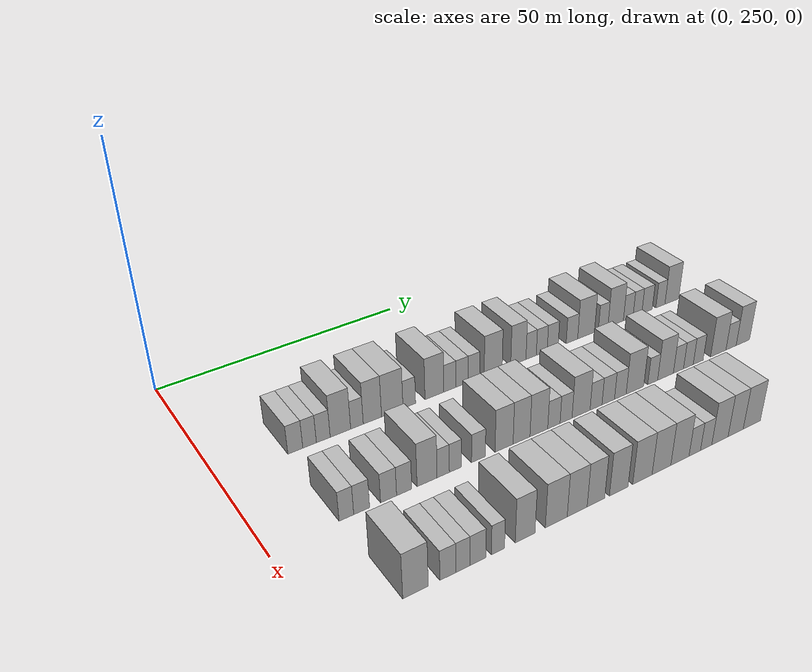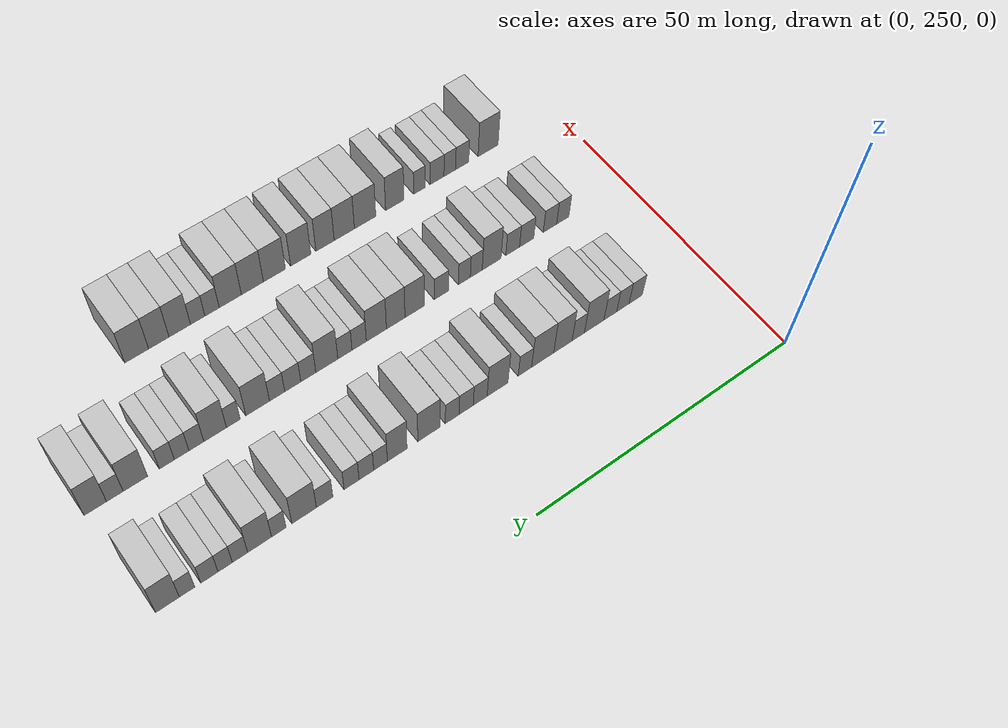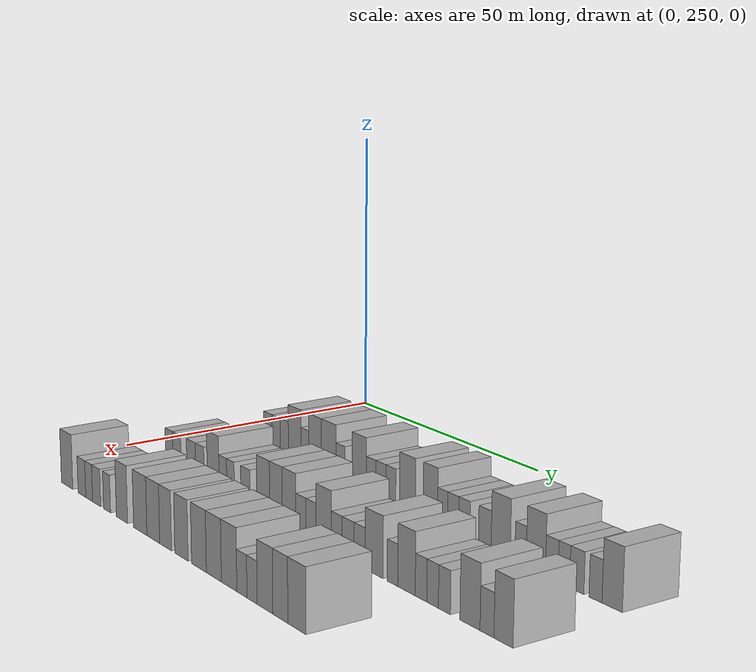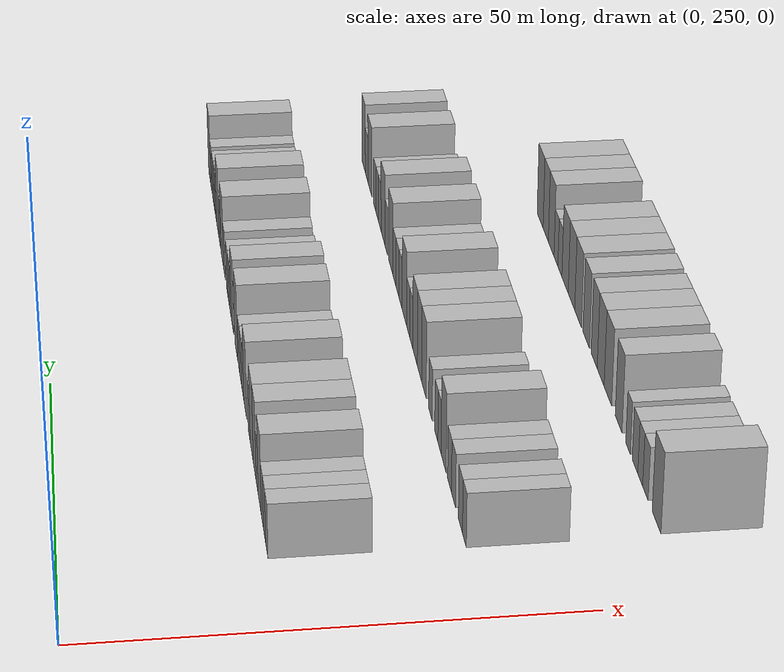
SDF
<sdf version="1.6">
 <world name="default">
  <model name="building_145">
   <static>1</static>
   <pose>25.0000 263.9168 0 0.000000 0.000000 0.000000</pose>
   <link name="link">
    <pose>0 0 3.00 0 0 0</pose>
    <collision name="collision"><geometry><box><size>10.0000 2.8024 6.0000</size></box></geometry></collision>
    <visual name="visual">
     <cast_shadows>0</cast_shadows>
     <geometry><box><size>10.0000 2.8024 6.0000</size></box></geometry>
     <material>
      <script>
       <uri>model://HANNAS_wall/materials/scripts</uri>
       <uri>model://HANNAS_wall/materials/textures</uri>
       <name>vrc/HANNAS_wall</name>
      </script>
     </material>
    </visual>
   </link>
  </model>
  <model name="building_146">
   <static>1</static>
   <pose>25.0000 266.6062 0 0.000000 0.000000 0.000000</pose>
   <link name="link">
    <pose>0 0 3.00 0 0 0</pose>
    <collision name="collision"><geometry><box><size>10.0000 2.5764 6.0000</size></box></geometry></collision>
    <visual name="visual">
     <cast_shadows>0</cast_shadows>
     <geometry><box><size>10.0000 2.5764 6.0000</size></box></geometry>
     <material>
      <script>
       <uri>model://HANNAS_wall/materials/scripts</uri>
       <uri>model://HANNAS_wall/materials/textures</uri>
       <name>vrc/HANNAS_wall</name>
      </script>
     </material>
    </visual>
   </link>
  </model>
  <model name="building_147">
   <static>1</static>
   <pose>25.0000 269.2245 0 0.000000 0.000000 0.000000</pose>
   <link name="link">
    <pose>0 0 3.00 0 0 0</pose>
    <collision name="collision"><geometry><box><size>10.0000 2.6601 6.0000</size></box></geometry></collision>
    <visual name="visual">
     <cast_shadows>0</cast_shadows>
     <geometry><box><size>10.0000 2.6601 6.0000</size></box></geometry>
     <material>
      <script>
       <uri>model://HANNAS_wall/materials/scripts</uri>
       <uri>model://HANNAS_wall/materials/textures</uri>
       <name>vrc/HANNAS_wall</name>
      </script>
     </material>
    </visual>
   </link>
  </model>
  <model name="building_148">
   <static>1</static>
   <pose>25.0000 272.5549 0 0.000000 0.000000 0.000000</pose>
   <link name="link">
    <pose>0 0 4.50 0 0 0</pose>
    <collision name="collision"><geometry><box><size>10.0000 4.0006 9.0000</size></box></geometry></collision>
    <visual name="visual">
     <cast_shadows>0</cast_shadows>
     <geometry><box><size>10.0000 4.0006 9.0000</size></box></geometry>
     <material>
      <script>
       <uri>model://HANNAS_wall/materials/scripts</uri>
       <uri>model://HANNAS_wall/materials/textures</uri>
       <name>vrc/HANNAS_wall</name>
      </script>
     </material>
    </visual>
   </link>
  </model>
  <model name="building_149">
   <static>1</static>
   <pose>25.0000 275.8095 0 0.000000 0.000000 0.000000</pose>
   <link name="link">
    <pose>0 0 3.00 0 0 0</pose>
    <collision name="collision"><geometry><box><size>10.0000 2.5087 6.0000</size></box></geometry></collision>
    <visual name="visual">
     <cast_shadows>0</cast_shadows>
     <geometry><box><size>10.0000 2.5087 6.0000</size></box></geometry>
     <material>
      <script>
       <uri>model://HANNAS_wall/materials/scripts</uri>
       <uri>model://HANNAS_wall/materials/textures</uri>
       <name>vrc/HANNAS_wall</name>
      </script>
     </material>
    </visual>
   </link>
  </model>
  <model name="building_150">
   <static>1</static>
   <pose>25.0000 278.9166 0 0.000000 0.000000 0.000000</pose>
   <link name="link">
    <pose>0 0 4.50 0 0 0</pose>
    <collision name="collision"><geometry><box><size>10.0000 3.7054 9.0000</size></box></geometry></collision>
    <visual name="visual">
     <cast_shadows>0</cast_shadows>
     <geometry><box><size>10.0000 3.7054 9.0000</size></box></geometry>
     <material>
      <script>
       <uri>model://HANNAS_wall/materials/scripts</uri>
       <uri>model://HANNAS_wall/materials/textures</uri>
       <name>vrc/HANNAS_wall</name>
      </script>
     </material>
    </visual>
   </link>
  </model>
  <model name="building_151">
   <static>1</static>
   <pose>25.0000 282.9810 0 0.000000 0.000000 0.000000</pose>
   <link name="link">
    <pose>0 0 4.50 0 0 0</pose>
    <collision name="collision"><geometry><box><size>10.0000 4.4233 9.0000</size></box></geometry></collision>
    <visual name="visual">
     <cast_shadows>0</cast_shadows>
     <geometry><box><size>10.0000 4.4233 9.0000</size></box></geometry>
     <material>
      <script>
       <uri>model://HANNAS_wall/materials/scripts</uri>
       <uri>model://HANNAS_wall/materials/textures</uri>
       <name>vrc/HANNAS_wall</name>
      </script>
     </material>
    </visual>
   </link>
  </model>
  <model name="building_152">
   <static>1</static>
   <pose>25.0000 286.5174 0 0.000000 0.000000 0.000000</pose>
   <link name="link">
    <pose>0 0 3.00 0 0 0</pose>
    <collision name="collision"><geometry><box><size>10.0000 2.6497 6.0000</size></box></geometry></collision>
    <visual name="visual">
     <cast_shadows>0</cast_shadows>
     <geometry><box><size>10.0000 2.6497 6.0000</size></box></geometry>
     <material>
      <script>
       <uri>model://HANNAS_wall/materials/scripts</uri>
       <uri>model://HANNAS_wall/materials/textures</uri>
       <name>vrc/HANNAS_wall</name>
      </script>
     </material>
    </visual>
   </link>
  </model>
  <model name="building_153">
   <static>1</static>
   <pose>25.0000 291.8683 0 0.000000 0.000000 0.000000</pose>
   <link name="link">
    <pose>0 0 4.50 0 0 0</pose>
    <collision name="collision"><geometry><box><size>10.0000 4.0520 9.0000</size></box></geometry></collision>
    <visual name="visual">
     <cast_shadows>0</cast_shadows>
     <geometry><box><size>10.0000 4.0520 9.0000</size></box></geometry>
     <material>
      <script>
       <uri>model://HANNAS_wall/materials/scripts</uri>
       <uri>model://HANNAS_wall/materials/textures</uri>
       <name>vrc/HANNAS_wall</name>
      </script>
     </material>
    </visual>
   </link>
  </model>
  <model name="building_154">
   <static>1</static>
   <pose>25.0000 295.2317 0 0.000000 0.000000 0.000000</pose>
   <link name="link">
    <pose>0 0 3.00 0 0 0</pose>
    <collision name="collision"><geometry><box><size>10.0000 2.6749 6.0000</size></box></geometry></collision>
    <visual name="visual">
     <cast_shadows>0</cast_shadows>
     <geometry><box><size>10.0000 2.6749 6.0000</size></box></geometry>
     <material>
      <script>
       <uri>model://HANNAS_wall/materials/scripts</uri>
       <uri>model://HANNAS_wall/materials/textures</uri>
       <name>vrc/HANNAS_wall</name>
      </script>
     </material>
    </visual>
   </link>
  </model>
  <model name="building_155">
   <static>1</static>
   <pose>25.0000 297.9296 0 0.000000 0.000000 0.000000</pose>
   <link name="link">
    <pose>0 0 3.00 0 0 0</pose>
    <collision name="collision"><geometry><box><size>10.0000 2.7210 6.0000</size></box></geometry></collision>
    <visual name="visual">
     <cast_shadows>0</cast_shadows>
     <geometry><box><size>10.0000 2.7210 6.0000</size></box></geometry>
     <material>
      <script>
       <uri>model://HANNAS_wall/materials/scripts</uri>
       <uri>model://HANNAS_wall/materials/textures</uri>
       <name>vrc/HANNAS_wall</name>
      </script>
     </material>
    </visual>
   </link>
  </model>
  <model name="building_156">
   <static>1</static>
   <pose>25.0000 300.6018 0 0.000000 0.000000 0.000000</pose>
   <link name="link">
    <pose>0 0 3.00 0 0 0</pose>
    <collision name="collision"><geometry><box><size>10.0000 2.6234 6.0000</size></box></geometry></collision>
    <visual name="visual">
     <cast_shadows>0</cast_shadows>
     <geometry><box><size>10.0000 2.6234 6.0000</size></box></geometry>
     <material>
      <script>
       <uri>model://HANNAS_wall/materials/scripts</uri>
       <uri>model://HANNAS_wall/materials/textures</uri>
       <name>vrc/HANNAS_wall</name>
      </script>
     </material>
    </visual>
   </link>
  </model>
  <model name="building_157">
   <static>1</static>
   <pose>25.0000 304.9858 0 0.000000 0.000000 0.000000</pose>
   <link name="link">
    <pose>0 0 4.50 0 0 0</pose>
    <collision name="collision"><geometry><box><size>10.0000 4.1446 9.0000</size></box></geometry></collision>
    <visual name="visual">
     <cast_shadows>0</cast_shadows>
     <geometry><box><size>10.0000 4.1446 9.0000</size></box></geometry>
     <material>
      <script>
       <uri>model://HANNAS_wall/materials/scripts</uri>
       <uri>model://HANNAS_wall/materials/textures</uri>
       <name>vrc/HANNAS_wall</name>
      </script>
     </material>
    </visual>
   </link>
  </model>
  <model name="building_158">
   <static>1</static>
   <pose>25.0000 310.8632 0 0.000000 0.000000 0.000000</pose>
   <link name="link">
    <pose>0 0 4.50 0 0 0</pose>
    <collision name="collision"><geometry><box><size>10.0000 3.6101 9.0000</size></box></geometry></collision>
    <visual name="visual">
     <cast_shadows>0</cast_shadows>
     <geometry><box><size>10.0000 3.6101 9.0000</size></box></geometry>
     <material>
      <script>
       <uri>model://HANNAS_wall/materials/scripts</uri>
       <uri>model://HANNAS_wall/materials/textures</uri>
       <name>vrc/HANNAS_wall</name>
      </script>
     </material>
    </visual>
   </link>
  </model>
  <model name="building_159">
   <static>1</static>
   <pose>25.0000 313.9102 0 0.000000 0.000000 0.000000</pose>
   <link name="link">
    <pose>0 0 3.00 0 0 0</pose>
    <collision name="collision"><geometry><box><size>10.0000 2.4839 6.0000</size></box></geometry></collision>
    <visual name="visual">
     <cast_shadows>0</cast_shadows>
     <geometry><box><size>10.0000 2.4839 6.0000</size></box></geometry>
     <material>
      <script>
       <uri>model://HANNAS_wall/materials/scripts</uri>
       <uri>model://HANNAS_wall/materials/textures</uri>
       <name>vrc/HANNAS_wall</name>
      </script>
     </material>
    </visual>
   </link>
  </model>
  <model name="building_160">
   <static>1</static>
   <pose>25.0000 316.4778 0 0.000000 0.000000 0.000000</pose>
   <link name="link">
    <pose>0 0 3.00 0 0 0</pose>
    <collision name="collision"><geometry><box><size>10.0000 2.6513 6.0000</size></box></geometry></collision>
    <visual name="visual">
     <cast_shadows>0</cast_shadows>
     <geometry><box><size>10.0000 2.6513 6.0000</size></box></geometry>
     <material>
      <script>
       <uri>model://HANNAS_wall/materials/scripts</uri>
       <uri>model://HANNAS_wall/materials/textures</uri>
       <name>vrc/HANNAS_wall</name>
      </script>
     </material>
    </visual>
   </link>
  </model>
  <model name="building_161">
   <static>1</static>
   <pose>25.0000 319.1506 0 0.000000 0.000000 0.000000</pose>
   <link name="link">
    <pose>0 0 3.00 0 0 0</pose>
    <collision name="collision"><geometry><box><size>10.0000 2.6942 6.0000</size></box></geometry></collision>
    <visual name="visual">
     <cast_shadows>0</cast_shadows>
     <geometry><box><size>10.0000 2.6942 6.0000</size></box></geometry>
     <material>
      <script>
       <uri>model://HANNAS_wall/materials/scripts</uri>
       <uri>model://HANNAS_wall/materials/textures</uri>
       <name>vrc/HANNAS_wall</name>
      </script>
     </material>
    </visual>
   </link>
  </model>
  <model name="building_162">
   <static>1</static>
   <pose>25.0000 323.9508 0 0.000000 0.000000 0.000000</pose>
   <link name="link">
    <pose>0 0 3.00 0 0 0</pose>
    <collision name="collision"><geometry><box><size>10.0000 2.9062 6.0000</size></box></geometry></collision>
    <visual name="visual">
     <cast_shadows>0</cast_shadows>
     <geometry><box><size>10.0000 2.9062 6.0000</size></box></geometry>
     <material>
      <script>
       <uri>model://HANNAS_wall/materials/scripts</uri>
       <uri>model://HANNAS_wall/materials/textures</uri>
       <name>vrc/HANNAS_wall</name>
      </script>
     </material>
    </visual>
   </link>
  </model>
  <model name="building_163">
   <static>1</static>
   <pose>25.0000 327.5592 0 0.000000 0.000000 0.000000</pose>
   <link name="link">
    <pose>0 0 4.50 0 0 0</pose>
    <collision name="collision"><geometry><box><size>10.0000 4.3105 9.0000</size></box></geometry></collision>
    <visual name="visual">
     <cast_shadows>0</cast_shadows>
     <geometry><box><size>10.0000 4.3105 9.0000</size></box></geometry>
     <material>
      <script>
       <uri>model://HANNAS_wall/materials/scripts</uri>
       <uri>model://HANNAS_wall/materials/textures</uri>
       <name>vrc/HANNAS_wall</name>
      </script>
     </material>
    </visual>
   </link>
  </model>
  <model name="building_164">
   <static>1</static>
   <pose>25.0000 331.9665 0 0.000000 0.000000 0.000000</pose>
   <link name="link">
    <pose>0 0 3.00 0 0 0</pose>
    <collision name="collision"><geometry><box><size>10.0000 2.5041 6.0000</size></box></geometry></collision>
    <visual name="visual">
     <cast_shadows>0</cast_shadows>
     <geometry><box><size>10.0000 2.5041 6.0000</size></box></geometry>
     <material>
      <script>
       <uri>model://HANNAS_wall/materials/scripts</uri>
       <uri>model://HANNAS_wall/materials/textures</uri>
       <name>vrc/HANNAS_wall</name>
      </script>
     </material>
    </visual>
   </link>
  </model>
  <model name="building_165">
   <static>1</static>
   <pose>25.0000 335.2694 0 0.000000 0.000000 0.000000</pose>
   <link name="link">
    <pose>0 0 4.50 0 0 0</pose>
    <collision name="collision"><geometry><box><size>10.0000 4.1018 9.0000</size></box></geometry></collision>
    <visual name="visual">
     <cast_shadows>0</cast_shadows>
     <geometry><box><size>10.0000 4.1018 9.0000</size></box></geometry>
     <material>
      <script>
       <uri>model://HANNAS_wall/materials/scripts</uri>
       <uri>model://HANNAS_wall/materials/textures</uri>
       <name>vrc/HANNAS_wall</name>
      </script>
     </material>
    </visual>
   </link>
  </model>
  <model name="building_166">
   <static>1</static>
   <pose>25.0000 338.6179 0 0.000000 0.000000 0.000000</pose>
   <link name="link">
    <pose>0 0 3.00 0 0 0</pose>
    <collision name="collision"><geometry><box><size>10.0000 2.5952 6.0000</size></box></geometry></collision>
    <visual name="visual">
     <cast_shadows>0</cast_shadows>
     <geometry><box><size>10.0000 2.5952 6.0000</size></box></geometry>
     <material>
      <script>
       <uri>model://HANNAS_wall/materials/scripts</uri>
       <uri>model://HANNAS_wall/materials/textures</uri>
       <name>vrc/HANNAS_wall</name>
      </script>
     </material>
    </visual>
   </link>
  </model>
  <model name="building_167">
   <static>1</static>
   <pose>25.0000 341.1165 0 0.000000 0.000000 0.000000</pose>
   <link name="link">
    <pose>0 0 3.00 0 0 0</pose>
    <collision name="collision"><geometry><box><size>10.0000 2.4020 6.0000</size></box></geometry></collision>
    <visual name="visual">
     <cast_shadows>0</cast_shadows>
     <geometry><box><size>10.0000 2.4020 6.0000</size></box></geometry>
     <material>
      <script>
       <uri>model://HANNAS_wall/materials/scripts</uri>
       <uri>model://HANNAS_wall/materials/textures</uri>
       <name>vrc/HANNAS_wall</name>
      </script>
     </material>
    </visual>
   </link>
  </model>
  <model name="building_168">
   <static>1</static>
   <pose>25.0000 343.7539 0 0.000000 0.000000 0.000000</pose>
   <link name="link">
    <pose>0 0 3.00 0 0 0</pose>
    <collision name="collision"><geometry><box><size>10.0000 2.8727 6.0000</size></box></geometry></collision>
    <visual name="visual">
     <cast_shadows>0</cast_shadows>
     <geometry><box><size>10.0000 2.8727 6.0000</size></box></geometry>
     <material>
      <script>
       <uri>model://HANNAS_wall/materials/scripts</uri>
       <uri>model://HANNAS_wall/materials/textures</uri>
       <name>vrc/HANNAS_wall</name>
      </script>
     </material>
    </visual>
   </link>
  </model>
  <model name="building_169">
   <static>1</static>
   <pose>25.0000 347.4581 0 0.000000 0.000000 0.000000</pose>
   <link name="link">
    <pose>0 0 3.00 0 0 0</pose>
    <collision name="collision"><geometry><box><size>10.0000 2.5357 6.0000</size></box></geometry></collision>
    <visual name="visual">
     <cast_shadows>0</cast_shadows>
     <geometry><box><size>10.0000 2.5357 6.0000</size></box></geometry>
     <material>
      <script>
       <uri>model://HANNAS_wall/materials/scripts</uri>
       <uri>model://HANNAS_wall/materials/textures</uri>
       <name>vrc/HANNAS_wall</name>
      </script>
     </material>
    </visual>
   </link>
  </model>
  <model name="building_170">
   <static>1</static>
   <pose>25.0000 350.6751 0 0.000000 0.000000 0.000000</pose>
   <link name="link">
    <pose>0 0 4.50 0 0 0</pose>
    <collision name="collision"><geometry><box><size>10.0000 3.8984 9.0000</size></box></geometry></collision>
    <visual name="visual">
     <cast_shadows>0</cast_shadows>
     <geometry><box><size>10.0000 3.8984 9.0000</size></box></geometry>
     <material>
      <script>
       <uri>model://HANNAS_wall/materials/scripts</uri>
       <uri>model://HANNAS_wall/materials/textures</uri>
       <name>vrc/HANNAS_wall</name>
      </script>
     </material>
    </visual>
   </link>
  </model>
  <model name="building_320">
   <static>1</static>
   <pose>44.0000 263.6017 0 0.000000 0.000000 0.000000</pose>
   <link name="link">
    <pose>0 0 3.00 0 0 0</pose>
    <collision name="collision"><geometry><box><size>10.0000 2.5951 6.0000</size></box></geometry></collision>
    <visual name="visual">
     <cast_shadows>0</cast_shadows>
     <geometry><box><size>10.0000 2.5951 6.0000</size></box></geometry>
     <material>
      <script>
       <uri>model://HANNAS_wall/materials/scripts</uri>
       <uri>model://HANNAS_wall/materials/textures</uri>
       <name>vrc/HANNAS_wall</name>
      </script>
     </material>
    </visual>
   </link>
  </model>
  <model name="building_321">
   <static>1</static>
   <pose>44.0000 266.3293 0 0.000000 0.000000 0.000000</pose>
   <link name="link">
    <pose>0 0 3.00 0 0 0</pose>
    <collision name="collision"><geometry><box><size>10.0000 2.8601 6.0000</size></box></geometry></collision>
    <visual name="visual">
     <cast_shadows>0</cast_shadows>
     <geometry><box><size>10.0000 2.8601 6.0000</size></box></geometry>
     <material>
      <script>
       <uri>model://HANNAS_wall/materials/scripts</uri>
       <uri>model://HANNAS_wall/materials/textures</uri>
       <name>vrc/HANNAS_wall</name>
      </script>
     </material>
    </visual>
   </link>
  </model>
  <model name="building_322">
   <static>1</static>
   <pose>44.0000 271.2401 0 0.000000 0.000000 0.000000</pose>
   <link name="link">
    <pose>0 0 3.00 0 0 0</pose>
    <collision name="collision"><geometry><box><size>10.0000 2.9617 6.0000</size></box></geometry></collision>
    <visual name="visual">
     <cast_shadows>0</cast_shadows>
     <geometry><box><size>10.0000 2.9617 6.0000</size></box></geometry>
     <material>
      <script>
       <uri>model://HANNAS_wall/materials/scripts</uri>
       <uri>model://HANNAS_wall/materials/textures</uri>
       <name>vrc/HANNAS_wall</name>
      </script>
     </material>
    </visual>
   </link>
  </model>
  <model name="building_323">
   <static>1</static>
   <pose>44.0000 274.1490 0 0.000000 0.000000 0.000000</pose>
   <link name="link">
    <pose>0 0 3.00 0 0 0</pose>
    <collision name="collision"><geometry><box><size>10.0000 2.8560 6.0000</size></box></geometry></collision>
    <visual name="visual">
     <cast_shadows>0</cast_shadows>
     <geometry><box><size>10.0000 2.8560 6.0000</size></box></geometry>
     <material>
      <script>
       <uri>model://HANNAS_wall/materials/scripts</uri>
       <uri>model://HANNAS_wall/materials/textures</uri>
       <name>vrc/HANNAS_wall</name>
      </script>
     </material>
    </visual>
   </link>
  </model>
  <model name="building_324">
   <static>1</static>
   <pose>44.0000 278.5038 0 0.000000 0.000000 0.000000</pose>
   <link name="link">
    <pose>0 0 4.50 0 0 0</pose>
    <collision name="collision"><geometry><box><size>10.0000 3.8538 9.0000</size></box></geometry></collision>
    <visual name="visual">
     <cast_shadows>0</cast_shadows>
     <geometry><box><size>10.0000 3.8538 9.0000</size></box></geometry>
     <material>
      <script>
       <uri>model://HANNAS_wall/materials/scripts</uri>
       <uri>model://HANNAS_wall/materials/textures</uri>
       <name>vrc/HANNAS_wall</name>
      </script>
     </material>
    </visual>
   </link>
  </model>
  <model name="building_325">
   <static>1</static>
   <pose>44.0000 281.6407 0 0.000000 0.000000 0.000000</pose>
   <link name="link">
    <pose>0 0 3.00 0 0 0</pose>
    <collision name="collision"><geometry><box><size>10.0000 2.4199 6.0000</size></box></geometry></collision>
    <visual name="visual">
     <cast_shadows>0</cast_shadows>
     <geometry><box><size>10.0000 2.4199 6.0000</size></box></geometry>
     <material>
      <script>
       <uri>model://HANNAS_wall/materials/scripts</uri>
       <uri>model://HANNAS_wall/materials/textures</uri>
       <name>vrc/HANNAS_wall</name>
      </script>
     </material>
    </visual>
   </link>
  </model>
  <model name="building_326">
   <static>1</static>
   <pose>44.0000 284.0597 0 0.000000 0.000000 0.000000</pose>
   <link name="link">
    <pose>0 0 3.00 0 0 0</pose>
    <collision name="collision"><geometry><box><size>10.0000 2.4182 6.0000</size></box></geometry></collision>
    <visual name="visual">
     <cast_shadows>0</cast_shadows>
     <geometry><box><size>10.0000 2.4182 6.0000</size></box></geometry>
     <material>
      <script>
       <uri>model://HANNAS_wall/materials/scripts</uri>
       <uri>model://HANNAS_wall/materials/textures</uri>
       <name>vrc/HANNAS_wall</name>
      </script>
     </material>
    </visual>
   </link>
  </model>
  <model name="building_327">
   <static>1</static>
   <pose>44.0000 288.6812 0 0.000000 0.000000 0.000000</pose>
   <link name="link">
    <pose>0 0 3.00 0 0 0</pose>
    <collision name="collision"><geometry><box><size>10.0000 2.8248 6.0000</size></box></geometry></collision>
    <visual name="visual">
     <cast_shadows>0</cast_shadows>
     <geometry><box><size>10.0000 2.8248 6.0000</size></box></geometry>
     <material>
      <script>
       <uri>model://HANNAS_wall/materials/scripts</uri>
       <uri>model://HANNAS_wall/materials/textures</uri>
       <name>vrc/HANNAS_wall</name>
      </script>
     </material>
    </visual>
   </link>
  </model>
  <model name="building_328">
   <static>1</static>
   <pose>44.0000 293.9810 0 0.000000 0.000000 0.000000</pose>
   <link name="link">
    <pose>0 0 4.50 0 0 0</pose>
    <collision name="collision"><geometry><box><size>10.0000 3.7749 9.0000</size></box></geometry></collision>
    <visual name="visual">
     <cast_shadows>0</cast_shadows>
     <geometry><box><size>10.0000 3.7749 9.0000</size></box></geometry>
     <material>
      <script>
       <uri>model://HANNAS_wall/materials/scripts</uri>
       <uri>model://HANNAS_wall/materials/textures</uri>
       <name>vrc/HANNAS_wall</name>
      </script>
     </material>
    </visual>
   </link>
  </model>
  <model name="building_329">
   <static>1</static>
   <pose>44.0000 297.6716 0 0.000000 0.000000 0.000000</pose>
   <link name="link">
    <pose>0 0 4.50 0 0 0</pose>
    <collision name="collision"><geometry><box><size>10.0000 3.6063 9.0000</size></box></geometry></collision>
    <visual name="visual">
     <cast_shadows>0</cast_shadows>
     <geometry><box><size>10.0000 3.6063 9.0000</size></box></geometry>
     <material>
      <script>
       <uri>model://HANNAS_wall/materials/scripts</uri>
       <uri>model://HANNAS_wall/materials/textures</uri>
       <name>vrc/HANNAS_wall</name>
      </script>
     </material>
    </visual>
   </link>
  </model>
  <model name="building_330">
   <static>1</static>
   <pose>44.0000 301.4115 0 0.000000 0.000000 0.000000</pose>
   <link name="link">
    <pose>0 0 4.50 0 0 0</pose>
    <collision name="collision"><geometry><box><size>10.0000 3.8734 9.0000</size></box></geometry></collision>
    <visual name="visual">
     <cast_shadows>0</cast_shadows>
     <geometry><box><size>10.0000 3.8734 9.0000</size></box></geometry>
     <material>
      <script>
       <uri>model://HANNAS_wall/materials/scripts</uri>
       <uri>model://HANNAS_wall/materials/textures</uri>
       <name>vrc/HANNAS_wall</name>
      </script>
     </material>
    </visual>
   </link>
  </model>
  <model name="building_331">
   <static>1</static>
   <pose>44.0000 304.7161 0 0.000000 0.000000 0.000000</pose>
   <link name="link">
    <pose>0 0 3.00 0 0 0</pose>
    <collision name="collision"><geometry><box><size>10.0000 2.7359 6.0000</size></box></geometry></collision>
    <visual name="visual">
     <cast_shadows>0</cast_shadows>
     <geometry><box><size>10.0000 2.7359 6.0000</size></box></geometry>
     <material>
      <script>
       <uri>model://HANNAS_wall/materials/scripts</uri>
       <uri>model://HANNAS_wall/materials/textures</uri>
       <name>vrc/HANNAS_wall</name>
      </script>
     </material>
    </visual>
   </link>
  </model>
  <model name="building_332">
   <static>1</static>
   <pose>44.0000 307.4286 0 0.000000 0.000000 0.000000</pose>
   <link name="link">
    <pose>0 0 3.00 0 0 0</pose>
    <collision name="collision"><geometry><box><size>10.0000 2.6890 6.0000</size></box></geometry></collision>
    <visual name="visual">
     <cast_shadows>0</cast_shadows>
     <geometry><box><size>10.0000 2.6890 6.0000</size></box></geometry>
     <material>
      <script>
       <uri>model://HANNAS_wall/materials/scripts</uri>
       <uri>model://HANNAS_wall/materials/textures</uri>
       <name>vrc/HANNAS_wall</name>
      </script>
     </material>
    </visual>
   </link>
  </model>
  <model name="building_333">
   <static>1</static>
   <pose>44.0000 310.8376 0 0.000000 0.000000 0.000000</pose>
   <link name="link">
    <pose>0 0 4.50 0 0 0</pose>
    <collision name="collision"><geometry><box><size>10.0000 4.1290 9.0000</size></box></geometry></collision>
    <visual name="visual">
     <cast_shadows>0</cast_shadows>
     <geometry><box><size>10.0000 4.1290 9.0000</size></box></geometry>
     <material>
      <script>
       <uri>model://HANNAS_wall/materials/scripts</uri>
       <uri>model://HANNAS_wall/materials/textures</uri>
       <name>vrc/HANNAS_wall</name>
      </script>
     </material>
    </visual>
   </link>
  </model>
  <model name="building_334">
   <static>1</static>
   <pose>44.0000 314.2913 0 0.000000 0.000000 0.000000</pose>
   <link name="link">
    <pose>0 0 3.00 0 0 0</pose>
    <collision name="collision"><geometry><box><size>10.0000 2.7785 6.0000</size></box></geometry></collision>
    <visual name="visual">
     <cast_shadows>0</cast_shadows>
     <geometry><box><size>10.0000 2.7785 6.0000</size></box></geometry>
     <material>
      <script>
       <uri>model://HANNAS_wall/materials/scripts</uri>
       <uri>model://HANNAS_wall/materials/textures</uri>
       <name>vrc/HANNAS_wall</name>
      </script>
     </material>
    </visual>
   </link>
  </model>
  <model name="building_335">
   <static>1</static>
   <pose>44.0000 317.1644 0 0.000000 0.000000 0.000000</pose>
   <link name="link">
    <pose>0 0 3.00 0 0 0</pose>
    <collision name="collision"><geometry><box><size>10.0000 2.9675 6.0000</size></box></geometry></collision>
    <visual name="visual">
     <cast_shadows>0</cast_shadows>
     <geometry><box><size>10.0000 2.9675 6.0000</size></box></geometry>
     <material>
      <script>
       <uri>model://HANNAS_wall/materials/scripts</uri>
       <uri>model://HANNAS_wall/materials/textures</uri>
       <name>vrc/HANNAS_wall</name>
      </script>
     </material>
    </visual>
   </link>
  </model>
  <model name="building_336">
   <static>1</static>
   <pose>44.0000 320.0405 0 0.000000 0.000000 0.000000</pose>
   <link name="link">
    <pose>0 0 3.00 0 0 0</pose>
    <collision name="collision"><geometry><box><size>10.0000 2.7847 6.0000</size></box></geometry></collision>
    <visual name="visual">
     <cast_shadows>0</cast_shadows>
     <geometry><box><size>10.0000 2.7847 6.0000</size></box></geometry>
     <material>
      <script>
       <uri>model://HANNAS_wall/materials/scripts</uri>
       <uri>model://HANNAS_wall/materials/textures</uri>
       <name>vrc/HANNAS_wall</name>
      </script>
     </material>
    </visual>
   </link>
  </model>
  <model name="building_337">
   <static>1</static>
   <pose>44.0000 323.5796 0 0.000000 0.000000 0.000000</pose>
   <link name="link">
    <pose>0 0 4.50 0 0 0</pose>
    <collision name="collision"><geometry><box><size>10.0000 4.2935 9.0000</size></box></geometry></collision>
    <visual name="visual">
     <cast_shadows>0</cast_shadows>
     <geometry><box><size>10.0000 4.2935 9.0000</size></box></geometry>
     <material>
      <script>
       <uri>model://HANNAS_wall/materials/scripts</uri>
       <uri>model://HANNAS_wall/materials/textures</uri>
       <name>vrc/HANNAS_wall</name>
      </script>
     </material>
    </visual>
   </link>
  </model>
  <model name="building_338">
   <static>1</static>
   <pose>44.0000 327.9568 0 0.000000 0.000000 0.000000</pose>
   <link name="link">
    <pose>0 0 3.00 0 0 0</pose>
    <collision name="collision"><geometry><box><size>10.0000 2.4608 6.0000</size></box></geometry></collision>
    <visual name="visual">
     <cast_shadows>0</cast_shadows>
     <geometry><box><size>10.0000 2.4608 6.0000</size></box></geometry>
     <material>
      <script>
       <uri>model://HANNAS_wall/materials/scripts</uri>
       <uri>model://HANNAS_wall/materials/textures</uri>
       <name>vrc/HANNAS_wall</name>
      </script>
     </material>
    </visual>
   </link>
  </model>
  <model name="building_339">
   <static>1</static>
   <pose>44.0000 331.1853 0 0.000000 0.000000 0.000000</pose>
   <link name="link">
    <pose>0 0 4.50 0 0 0</pose>
    <collision name="collision"><geometry><box><size>10.0000 3.9963 9.0000</size></box></geometry></collision>
    <visual name="visual">
     <cast_shadows>0</cast_shadows>
     <geometry><box><size>10.0000 3.9963 9.0000</size></box></geometry>
     <material>
      <script>
       <uri>model://HANNAS_wall/materials/scripts</uri>
       <uri>model://HANNAS_wall/materials/textures</uri>
       <name>vrc/HANNAS_wall</name>
      </script>
     </material>
    </visual>
   </link>
  </model>
  <model name="building_340">
   <static>1</static>
   <pose>44.0000 334.4826 0 0.000000 0.000000 0.000000</pose>
   <link name="link">
    <pose>0 0 3.00 0 0 0</pose>
    <collision name="collision"><geometry><box><size>10.0000 2.5983 6.0000</size></box></geometry></collision>
    <visual name="visual">
     <cast_shadows>0</cast_shadows>
     <geometry><box><size>10.0000 2.5983 6.0000</size></box></geometry>
     <material>
      <script>
       <uri>model://HANNAS_wall/materials/scripts</uri>
       <uri>model://HANNAS_wall/materials/textures</uri>
       <name>vrc/HANNAS_wall</name>
      </script>
     </material>
    </visual>
   </link>
  </model>
  <model name="building_341">
   <static>1</static>
   <pose>44.0000 337.0507 0 0.000000 0.000000 0.000000</pose>
   <link name="link">
    <pose>0 0 3.00 0 0 0</pose>
    <collision name="collision"><geometry><box><size>10.0000 2.5379 6.0000</size></box></geometry></collision>
    <visual name="visual">
     <cast_shadows>0</cast_shadows>
     <geometry><box><size>10.0000 2.5379 6.0000</size></box></geometry>
     <material>
      <script>
       <uri>model://HANNAS_wall/materials/scripts</uri>
       <uri>model://HANNAS_wall/materials/textures</uri>
       <name>vrc/HANNAS_wall</name>
      </script>
     </material>
    </visual>
   </link>
  </model>
  <model name="building_342">
   <static>1</static>
   <pose>44.0000 339.6218 0 0.000000 0.000000 0.000000</pose>
   <link name="link">
    <pose>0 0 3.00 0 0 0</pose>
    <collision name="collision"><geometry><box><size>10.0000 2.6044 6.0000</size></box></geometry></collision>
    <visual name="visual">
     <cast_shadows>0</cast_shadows>
     <geometry><box><size>10.0000 2.6044 6.0000</size></box></geometry>
     <material>
      <script>
       <uri>model://HANNAS_wall/materials/scripts</uri>
       <uri>model://HANNAS_wall/materials/textures</uri>
       <name>vrc/HANNAS_wall</name>
      </script>
     </material>
    </visual>
   </link>
  </model>
  <model name="building_343">
   <static>1</static>
   <pose>44.0000 345.0038 0 0.000000 0.000000 0.000000</pose>
   <link name="link">
    <pose>0 0 4.50 0 0 0</pose>
    <collision name="collision"><geometry><box><size>10.0000 4.1595 9.0000</size></box></geometry></collision>
    <visual name="visual">
     <cast_shadows>0</cast_shadows>
     <geometry><box><size>10.0000 4.1595 9.0000</size></box></geometry>
     <material>
      <script>
       <uri>model://HANNAS_wall/materials/scripts</uri>
       <uri>model://HANNAS_wall/materials/textures</uri>
       <name>vrc/HANNAS_wall</name>
      </script>
     </material>
    </visual>
   </link>
  </model>
  <model name="building_344">
   <static>1</static>
   <pose>44.0000 348.4820 0 0.000000 0.000000 0.000000</pose>
   <link name="link">
    <pose>0 0 3.00 0 0 0</pose>
    <collision name="collision"><geometry><box><size>10.0000 2.7969 6.0000</size></box></geometry></collision>
    <visual name="visual">
     <cast_shadows>0</cast_shadows>
     <geometry><box><size>10.0000 2.7969 6.0000</size></box></geometry>
     <material>
      <script>
       <uri>model://HANNAS_wall/materials/scripts</uri>
       <uri>model://HANNAS_wall/materials/textures</uri>
       <name>vrc/HANNAS_wall</name>
      </script>
     </material>
    </visual>
   </link>
  </model>
  <model name="building_345">
   <static>1</static>
   <pose>44.0000 351.7550 0 0.000000 0.000000 0.000000</pose>
   <link name="link">
    <pose>0 0 4.50 0 0 0</pose>
    <collision name="collision"><geometry><box><size>10.0000 3.7489 9.0000</size></box></geometry></collision>
    <visual name="visual">
     <cast_shadows>0</cast_shadows>
     <geometry><box><size>10.0000 3.7489 9.0000</size></box></geometry>
     <material>
      <script>
       <uri>model://HANNAS_wall/materials/scripts</uri>
       <uri>model://HANNAS_wall/materials/textures</uri>
       <name>vrc/HANNAS_wall</name>
      </script>
     </material>
    </visual>
   </link>
  </model>
  <model name="building_496">
   <static>1</static>
   <pose>63.0000 264.7548 0 0.000000 0.000000 0.000000</pose>
   <link name="link">
    <pose>0 0 4.50 0 0 0</pose>
    <collision name="collision"><geometry><box><size>10.0000 4.3124 9.0000</size></box></geometry></collision>
    <visual name="visual">
     <cast_shadows>0</cast_shadows>
     <geometry><box><size>10.0000 4.3124 9.0000</size></box></geometry>
     <material>
      <script>
       <uri>model://HANNAS_wall/materials/scripts</uri>
       <uri>model://HANNAS_wall/materials/textures</uri>
       <name>vrc/HANNAS_wall</name>
      </script>
     </material>
    </visual>
   </link>
  </model>
  <model name="building_497">
   <static>1</static>
   <pose>63.0000 270.3085 0 0.000000 0.000000 0.000000</pose>
   <link name="link">
    <pose>0 0 3.00 0 0 0</pose>
    <collision name="collision"><geometry><box><size>10.0000 2.7950 6.0000</size></box></geometry></collision>
    <visual name="visual">
     <cast_shadows>0</cast_shadows>
     <geometry><box><size>10.0000 2.7950 6.0000</size></box></geometry>
     <material>
      <script>
       <uri>model://HANNAS_wall/materials/scripts</uri>
       <uri>model://HANNAS_wall/materials/textures</uri>
       <name>vrc/HANNAS_wall</name>
      </script>
     </material>
    </visual>
   </link>
  </model>
  <model name="building_498">
   <static>1</static>
   <pose>63.0000 272.9425 0 0.000000 0.000000 0.000000</pose>
   <link name="link">
    <pose>0 0 3.00 0 0 0</pose>
    <collision name="collision"><geometry><box><size>10.0000 2.4731 6.0000</size></box></geometry></collision>
    <visual name="visual">
     <cast_shadows>0</cast_shadows>
     <geometry><box><size>10.0000 2.4731 6.0000</size></box></geometry>
     <material>
      <script>
       <uri>model://HANNAS_wall/materials/scripts</uri>
       <uri>model://HANNAS_wall/materials/textures</uri>
       <name>vrc/HANNAS_wall</name>
      </script>
     </material>
    </visual>
   </link>
  </model>
  <model name="building_499">
   <static>1</static>
   <pose>63.0000 275.6308 0 0.000000 0.000000 0.000000</pose>
   <link name="link">
    <pose>0 0 3.00 0 0 0</pose>
    <collision name="collision"><geometry><box><size>10.0000 2.9033 6.0000</size></box></geometry></collision>
    <visual name="visual">
     <cast_shadows>0</cast_shadows>
     <geometry><box><size>10.0000 2.9033 6.0000</size></box></geometry>
     <material>
      <script>
       <uri>model://HANNAS_wall/materials/scripts</uri>
       <uri>model://HANNAS_wall/materials/textures</uri>
       <name>vrc/HANNAS_wall</name>
      </script>
     </material>
    </visual>
   </link>
  </model>
  <model name="building_500">
   <static>1</static>
   <pose>63.0000 279.3023 0 0.000000 0.000000 0.000000</pose>
   <link name="link">
    <pose>0 0 3.00 0 0 0</pose>
    <collision name="collision"><geometry><box><size>10.0000 2.4397 6.0000</size></box></geometry></collision>
    <visual name="visual">
     <cast_shadows>0</cast_shadows>
     <geometry><box><size>10.0000 2.4397 6.0000</size></box></geometry>
     <material>
      <script>
       <uri>model://HANNAS_wall/materials/scripts</uri>
       <uri>model://HANNAS_wall/materials/textures</uri>
       <name>vrc/HANNAS_wall</name>
      </script>
     </material>
    </visual>
   </link>
  </model>
  <model name="building_501">
   <static>1</static>
   <pose>63.0000 284.4084 0 0.000000 0.000000 0.000000</pose>
   <link name="link">
    <pose>0 0 4.50 0 0 0</pose>
    <collision name="collision"><geometry><box><size>10.0000 3.7726 9.0000</size></box></geometry></collision>
    <visual name="visual">
     <cast_shadows>0</cast_shadows>
     <geometry><box><size>10.0000 3.7726 9.0000</size></box></geometry>
     <material>
      <script>
       <uri>model://HANNAS_wall/materials/scripts</uri>
       <uri>model://HANNAS_wall/materials/textures</uri>
       <name>vrc/HANNAS_wall</name>
      </script>
     </material>
    </visual>
   </link>
  </model>
  <model name="building_502">
   <static>1</static>
   <pose>63.0000 290.4521 0 0.000000 0.000000 0.000000</pose>
   <link name="link">
    <pose>0 0 4.50 0 0 0</pose>
    <collision name="collision"><geometry><box><size>10.0000 4.3149 9.0000</size></box></geometry></collision>
    <visual name="visual">
     <cast_shadows>0</cast_shadows>
     <geometry><box><size>10.0000 4.3149 9.0000</size></box></geometry>
     <material>
      <script>
       <uri>model://HANNAS_wall/materials/scripts</uri>
       <uri>model://HANNAS_wall/materials/textures</uri>
       <name>vrc/HANNAS_wall</name>
      </script>
     </material>
    </visual>
   </link>
  </model>
  <model name="building_503">
   <static>1</static>
   <pose>63.0000 294.6258 0 0.000000 0.000000 0.000000</pose>
   <link name="link">
    <pose>0 0 4.50 0 0 0</pose>
    <collision name="collision"><geometry><box><size>10.0000 4.0325 9.0000</size></box></geometry></collision>
    <visual name="visual">
     <cast_shadows>0</cast_shadows>
     <geometry><box><size>10.0000 4.0325 9.0000</size></box></geometry>
     <material>
      <script>
       <uri>model://HANNAS_wall/materials/scripts</uri>
       <uri>model://HANNAS_wall/materials/textures</uri>
       <name>vrc/HANNAS_wall</name>
      </script>
     </material>
    </visual>
   </link>
  </model>
  <model name="building_504">
   <static>1</static>
   <pose>63.0000 298.4525 0 0.000000 0.000000 0.000000</pose>
   <link name="link">
    <pose>0 0 4.50 0 0 0</pose>
    <collision name="collision"><geometry><box><size>10.0000 3.6209 9.0000</size></box></geometry></collision>
    <visual name="visual">
     <cast_shadows>0</cast_shadows>
     <geometry><box><size>10.0000 3.6209 9.0000</size></box></geometry>
     <material>
      <script>
       <uri>model://HANNAS_wall/materials/scripts</uri>
       <uri>model://HANNAS_wall/materials/textures</uri>
       <name>vrc/HANNAS_wall</name>
      </script>
     </material>
    </visual>
   </link>
  </model>
  <model name="building_505">
   <static>1</static>
   <pose>63.0000 303.2364 0 0.000000 0.000000 0.000000</pose>
   <link name="link">
    <pose>0 0 4.50 0 0 0</pose>
    <collision name="collision"><geometry><box><size>10.0000 3.9469 9.0000</size></box></geometry></collision>
    <visual name="visual">
     <cast_shadows>0</cast_shadows>
     <geometry><box><size>10.0000 3.9469 9.0000</size></box></geometry>
     <material>
      <script>
       <uri>model://HANNAS_wall/materials/scripts</uri>
       <uri>model://HANNAS_wall/materials/textures</uri>
       <name>vrc/HANNAS_wall</name>
      </script>
     </material>
    </visual>
   </link>
  </model>
  <model name="building_506">
   <static>1</static>
   <pose>63.0000 308.3332 0 0.000000 0.000000 0.000000</pose>
   <link name="link">
    <pose>0 0 4.50 0 0 0</pose>
    <collision name="collision"><geometry><box><size>10.0000 4.2466 9.0000</size></box></geometry></collision>
    <visual name="visual">
     <cast_shadows>0</cast_shadows>
     <geometry><box><size>10.0000 4.2466 9.0000</size></box></geometry>
     <material>
      <script>
       <uri>model://HANNAS_wall/materials/scripts</uri>
       <uri>model://HANNAS_wall/materials/textures</uri>
       <name>vrc/HANNAS_wall</name>
      </script>
     </material>
    </visual>
   </link>
  </model>
  <model name="building_507">
   <static>1</static>
   <pose>63.0000 312.5521 0 0.000000 0.000000 0.000000</pose>
   <link name="link">
    <pose>0 0 4.50 0 0 0</pose>
    <collision name="collision"><geometry><box><size>10.0000 4.1911 9.0000</size></box></geometry></collision>
    <visual name="visual">
     <cast_shadows>0</cast_shadows>
     <geometry><box><size>10.0000 4.1911 9.0000</size></box></geometry>
     <material>
      <script>
       <uri>model://HANNAS_wall/materials/scripts</uri>
       <uri>model://HANNAS_wall/materials/textures</uri>
       <name>vrc/HANNAS_wall</name>
      </script>
     </material>
    </visual>
   </link>
  </model>
  <model name="building_508">
   <static>1</static>
   <pose>63.0000 316.7325 0 0.000000 0.000000 0.000000</pose>
   <link name="link">
    <pose>0 0 4.50 0 0 0</pose>
    <collision name="collision"><geometry><box><size>10.0000 4.1698 9.0000</size></box></geometry></collision>
    <visual name="visual">
     <cast_shadows>0</cast_shadows>
     <geometry><box><size>10.0000 4.1698 9.0000</size></box></geometry>
     <material>
      <script>
       <uri>model://HANNAS_wall/materials/scripts</uri>
       <uri>model://HANNAS_wall/materials/textures</uri>
       <name>vrc/HANNAS_wall</name>
      </script>
     </material>
    </visual>
   </link>
  </model>
  <model name="building_509">
   <static>1</static>
   <pose>63.0000 320.1548 0 0.000000 0.000000 0.000000</pose>
   <link name="link">
    <pose>0 0 3.00 0 0 0</pose>
    <collision name="collision"><geometry><box><size>10.0000 2.6748 6.0000</size></box></geometry></collision>
    <visual name="visual">
     <cast_shadows>0</cast_shadows>
     <geometry><box><size>10.0000 2.6748 6.0000</size></box></geometry>
     <material>
      <script>
       <uri>model://HANNAS_wall/materials/scripts</uri>
       <uri>model://HANNAS_wall/materials/textures</uri>
       <name>vrc/HANNAS_wall</name>
      </script>
     </material>
    </visual>
   </link>
  </model>
  <model name="building_510">
   <static>1</static>
   <pose>63.0000 322.8231 0 0.000000 0.000000 0.000000</pose>
   <link name="link">
    <pose>0 0 3.00 0 0 0</pose>
    <collision name="collision"><geometry><box><size>10.0000 2.6617 6.0000</size></box></geometry></collision>
    <visual name="visual">
     <cast_shadows>0</cast_shadows>
     <geometry><box><size>10.0000 2.6617 6.0000</size></box></geometry>
     <material>
      <script>
       <uri>model://HANNAS_wall/materials/scripts</uri>
       <uri>model://HANNAS_wall/materials/textures</uri>
       <name>vrc/HANNAS_wall</name>
      </script>
     </material>
    </visual>
   </link>
  </model>
  <model name="building_511">
   <static>1</static>
   <pose>63.0000 326.1185 0 0.000000 0.000000 0.000000</pose>
   <link name="link">
    <pose>0 0 4.50 0 0 0</pose>
    <collision name="collision"><geometry><box><size>10.0000 3.9292 9.0000</size></box></geometry></collision>
    <visual name="visual">
     <cast_shadows>0</cast_shadows>
     <geometry><box><size>10.0000 3.9292 9.0000</size></box></geometry>
     <material>
      <script>
       <uri>model://HANNAS_wall/materials/scripts</uri>
       <uri>model://HANNAS_wall/materials/textures</uri>
       <name>vrc/HANNAS_wall</name>
      </script>
     </material>
    </visual>
   </link>
  </model>
  <model name="building_512">
   <static>1</static>
   <pose>63.0000 329.9365 0 0.000000 0.000000 0.000000</pose>
   <link name="link">
    <pose>0 0 4.50 0 0 0</pose>
    <collision name="collision"><geometry><box><size>10.0000 3.7068 9.0000</size></box></geometry></collision>
    <visual name="visual">
     <cast_shadows>0</cast_shadows>
     <geometry><box><size>10.0000 3.7068 9.0000</size></box></geometry>
     <material>
      <script>
       <uri>model://HANNAS_wall/materials/scripts</uri>
       <uri>model://HANNAS_wall/materials/textures</uri>
       <name>vrc/HANNAS_wall</name>
      </script>
     </material>
    </visual>
   </link>
  </model>
  <model name="building_513">
   <static>1</static>
   <pose>63.0000 333.9376 0 0.000000 0.000000 0.000000</pose>
   <link name="link">
    <pose>0 0 4.50 0 0 0</pose>
    <collision name="collision"><geometry><box><size>10.0000 4.2952 9.0000</size></box></geometry></collision>
    <visual name="visual">
     <cast_shadows>0</cast_shadows>
     <geometry><box><size>10.0000 4.2952 9.0000</size></box></geometry>
     <material>
      <script>
       <uri>model://HANNAS_wall/materials/scripts</uri>
       <uri>model://HANNAS_wall/materials/textures</uri>
       <name>vrc/HANNAS_wall</name>
      </script>
     </material>
    </visual>
   </link>
  </model>
 </world>
</sdf>
